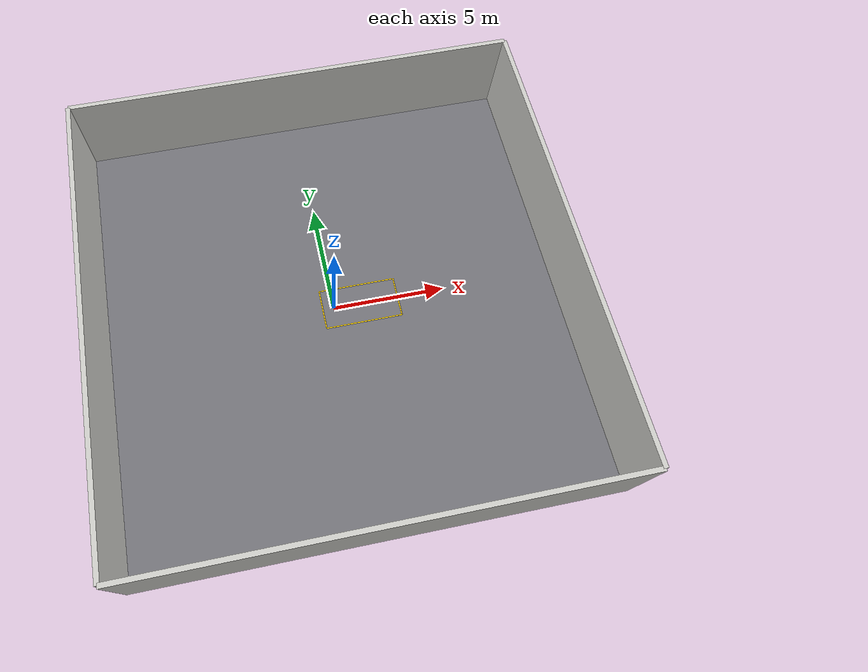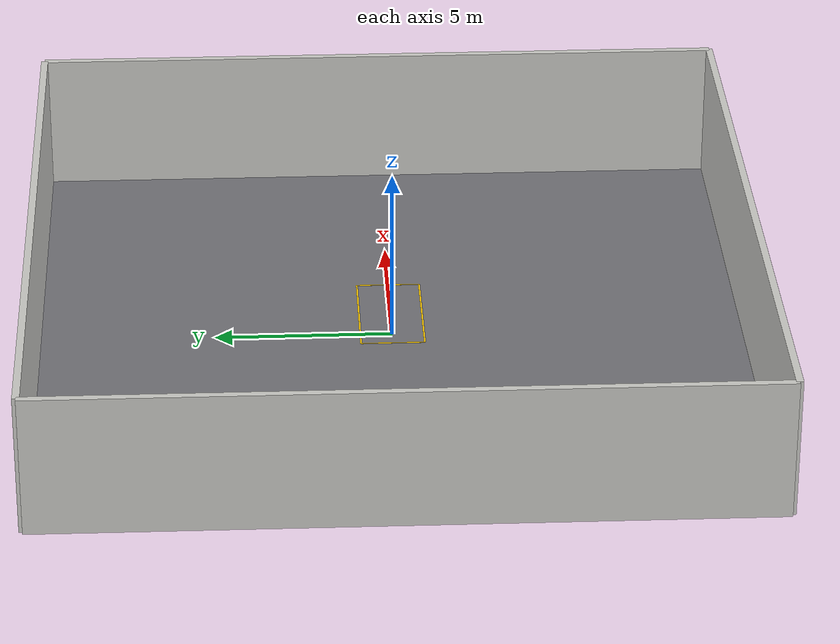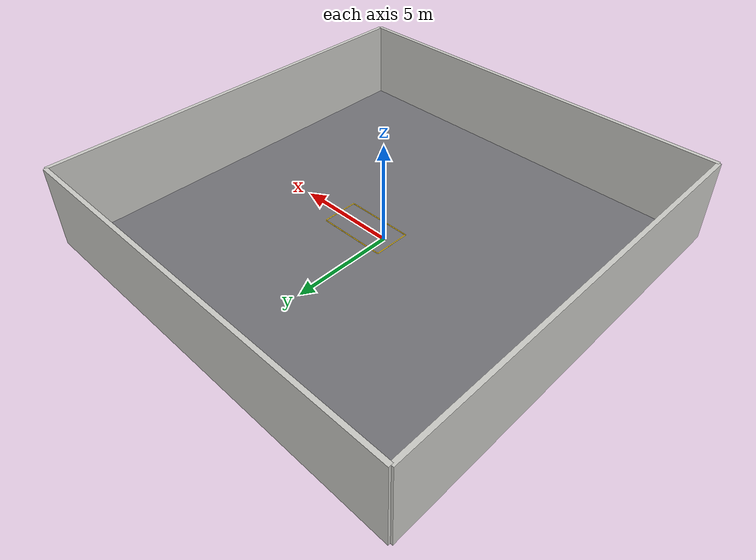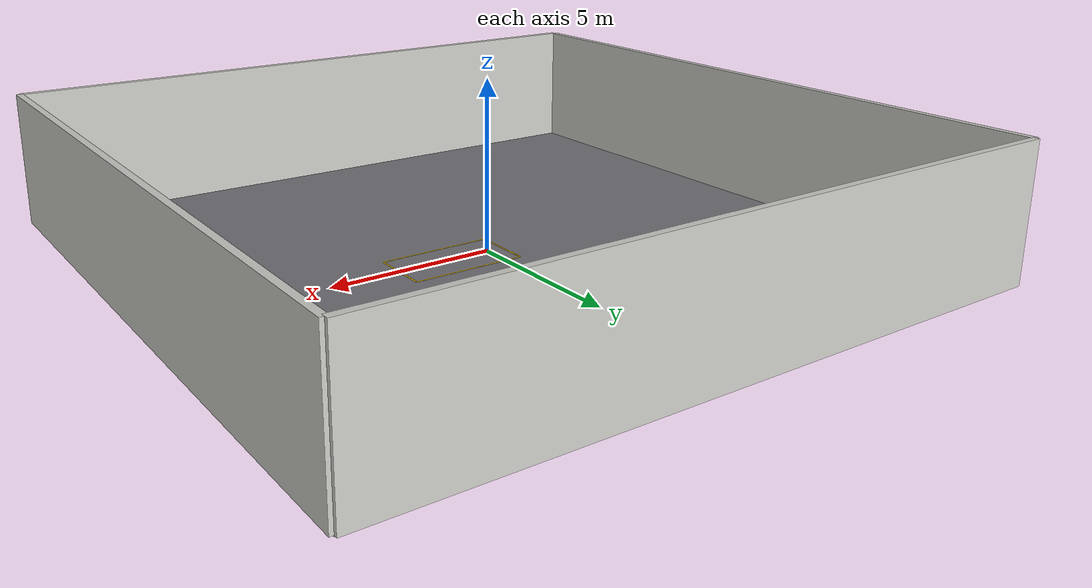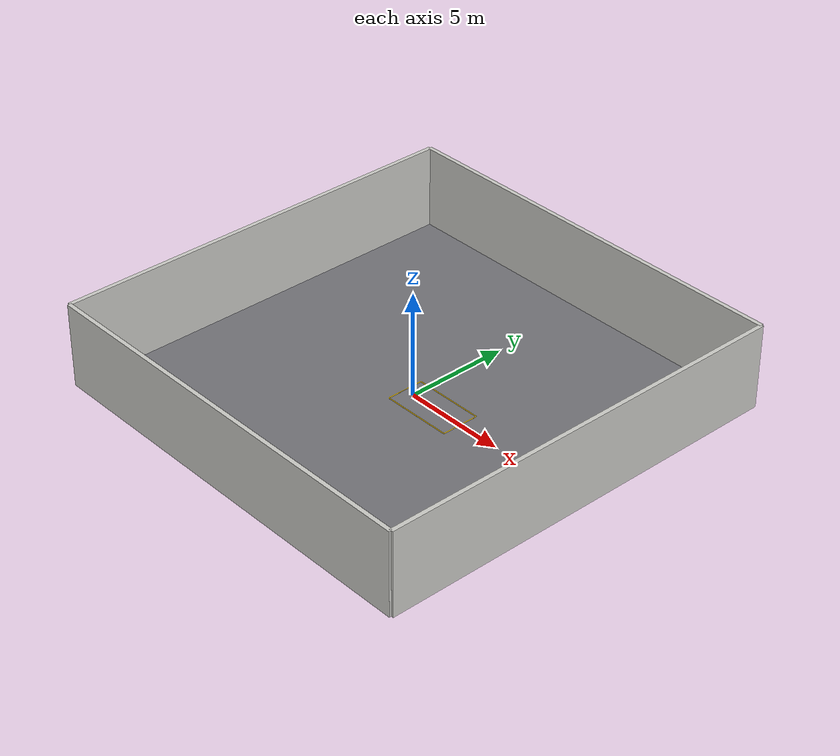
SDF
<sdf version="1.9">
 <world name="car_factory">
  <plugin filename="gz-sim-physics-system" name="gz::sim::systems::Physics"/>
  <plugin filename="gz-sim-user-commands-system" name="gz::sim::systems::UserCommands"/>
  <plugin filename="gz-sim-scene-broadcaster-system" name="gz::sim::systems::SceneBroadcaster"/>
  <plugin filename="gz-sim-sensors-system" name="gz::sim::systems::Sensors">
   <render_engine>ogre2</render_engine>
  </plugin>
  <plugin filename="gz-sim-contact-system" name="gz::sim::systems::Contact"/>
  <gravity>0 0 -9.8</gravity>
  <light type="directional" name="sun">
   <pose>0 0 10 0 0 0</pose>
   <diffuse>0.9 0.9 0.9 1</diffuse>
   <specular>0.3 0.3 0.3 1</specular>
   <direction>-0.4 0.2 -0.9</direction>
  </light>
  <model name="factory_floor">
   <static>true</static>
   <link name="floor_link">
    <collision name="floor_collision">
     <geometry><plane><normal>0 0 1</normal><size>20 20</size></plane></geometry>
    </collision>
    <visual name="floor_visual">
     <geometry><plane><normal>0 0 1</normal><size>20 20</size></plane></geometry>
     <material><ambient>0.45 0.45 0.47 1</ambient><diffuse>0.45 0.45 0.47 1</diffuse></material>
    </visual>
   </link>
  </model>
  <model name="factory_walls">
   <static>true</static>
   <link name="wall_north">
    <pose>0 10 2 0 0 0</pose>
    <visual name="v">
     <geometry><box><size>20 0.2 4</size></box></geometry>
     <material><ambient>0.8 0.8 0.78 1</ambient><diffuse>0.8 0.8 0.78 1</diffuse></material>
    </visual>
    <collision name="c"><geometry><box><size>20 0.2 4</size></box></geometry></collision>
   </link>
   <link name="wall_south">
    <pose>0 -10 2 0 0 0</pose>
    <visual name="v">
     <geometry><box><size>20 0.2 4</size></box></geometry>
     <material><ambient>0.8 0.8 0.78 1</ambient><diffuse>0.8 0.8 0.78 1</diffuse></material>
    </visual>
    <collision name="c"><geometry><box><size>20 0.2 4</size></box></geometry></collision>
   </link>
   <link name="wall_east">
    <pose>10 0 2 0 0 1.5708</pose>
    <visual name="v">
     <geometry><box><size>20 0.2 4</size></box></geometry>
     <material><ambient>0.8 0.8 0.78 1</ambient><diffuse>0.8 0.8 0.78 1</diffuse></material>
    </visual>
    <collision name="c"><geometry><box><size>20 0.2 4</size></box></geometry></collision>
   </link>
   <link name="wall_west">
    <pose>-10 0 2 0 0 1.5708</pose>
    <visual name="v">
     <geometry><box><size>20 0.2 4</size></box></geometry>
     <material><ambient>0.8 0.8 0.78 1</ambient><diffuse>0.8 0.8 0.78 1</diffuse></material>
    </visual>
    <collision name="c"><geometry><box><size>20 0.2 4</size></box></geometry></collision>
   </link>
  </model>
  <light type="point" name="ceiling_light_1">
   <pose>0 3 3.8 0 0 0</pose>
   <diffuse>1 1 0.95 1</diffuse>
   <attenuation><range>15</range><linear>0.1</linear><constant>0.3</constant></attenuation>
   <cast_shadows>false</cast_shadows>
  </light>
  <light type="point" name="ceiling_light_2">
   <pose>0 -3 3.8 0 0 0</pose>
   <diffuse>1 1 0.95 1</diffuse>
   <attenuation><range>15</range><linear>0.1</linear><constant>0.3</constant></attenuation>
   <cast_shadows>false</cast_shadows>
  </light>
  <light type="point" name="ceiling_light_3">
   <pose>4 0 3.8 0 0 0</pose>
   <diffuse>1 1 0.95 1</diffuse>
   <attenuation><range>15</range><linear>0.1</linear><constant>0.3</constant></attenuation>
   <cast_shadows>false</cast_shadows>
  </light>
  <model name="safety_zone_markings">
   <static>true</static>
   <link name="stripe_link">
    <pose>0 0 0.002 0 0 0</pose>
    <visual name="stripe_front">
     <pose>1.2 0.9 0 0 0 0</pose>
     <geometry><box><size>3.4 0.05 0.001</size></box></geometry>
     <material><ambient>1 0.8 0 1</ambient><diffuse>1 0.8 0 1</diffuse></material>
    </visual>
    <visual name="stripe_back">
     <pose>1.2 -0.9 0 0 0 0</pose>
     <geometry><box><size>3.4 0.05 0.001</size></box></geometry>
     <material><ambient>1 0.8 0 1</ambient><diffuse>1 0.8 0 1</diffuse></material>
    </visual>
    <visual name="stripe_left">
     <pose>-0.5 0 0 0 0 1.5708</pose>
     <geometry><box><size>1.8 0.05 0.001</size></box></geometry>
     <material><ambient>1 0.8 0 1</ambient><diffuse>1 0.8 0 1</diffuse></material>
    </visual>
    <visual name="stripe_right">
     <pose>2.9 0 0 0 0 1.5708</pose>
     <geometry><box><size>1.8 0.05 0.001</size></box></geometry>
     <material><ambient>1 0.8 0 1</ambient><diffuse>1 0.8 0 1</diffuse></material>
    </visual>
   </link>
  </model>
 </world>
</sdf>
